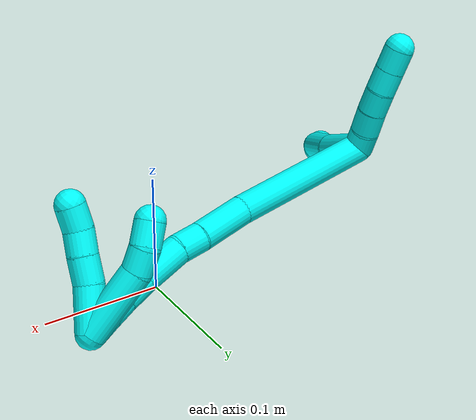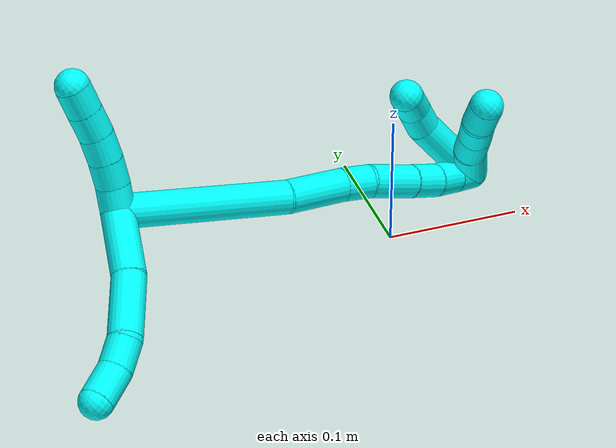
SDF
<sdf version="1.7">
 <world name="default">
  <model name="3">
   <static>0</static>
   <link name="3">
    <collision name="collision-cylinder-e_1_2_8">
     <pose>-0.01956 -0.01368 -0.009776 2.19125 -0.860745 -1.45708</pose>
     <geometry><cylinder><radius>0.0125</radius><length>0.051588</length></cylinder></geometry>
     <surface>
      <friction><ode><mu>1.16</mu><mu2>1.16</mu2><slip1>0</slip1><slip2>0</slip2></ode></friction>
      <contact><ode><kp>1e+06</kp><kd>1</kd><max_vel>0</max_vel><min_depth>0.001</min_depth></ode></contact>
     </surface>
    </collision>
    <visual name="visual-cylinder-e_1_2_8">
     <pose>-0.01956 -0.01368 -0.009776 2.19125 -0.860745 -1.45708</pose>
     <geometry><cylinder><radius>0.0125</radius><length>0.051588</length></cylinder></geometry>
     <material><ambient>0.003922 1 0.996078 1</ambient></material>
    </visual>
    <collision name="collision-cylinder-e_2_8_9">
     <pose>-0.060114 -0.038274 -0.024937 2.02915 -1.04544 -1.49484</pose>
     <geometry><cylinder><radius>0.0125</radius><length>0.048532</length></cylinder></geometry>
     <surface>
      <friction><ode><mu>1.16</mu><mu2>1.16</mu2><slip1>0</slip1><slip2>0</slip2></ode></friction>
      <contact><ode><kp>1e+06</kp><kd>1</kd><max_vel>0</max_vel><min_depth>0.001</min_depth></ode></contact>
     </surface>
    </collision>
    <visual name="visual-cylinder-e_2_8_9">
     <pose>-0.060114 -0.038274 -0.024937 2.02915 -1.04544 -1.49484</pose>
     <geometry><cylinder><radius>0.0125</radius><length>0.048532</length></cylinder></geometry>
     <material><ambient>0.003922 1 0.996078 1</ambient></material>
    </visual>
    <collision name="collision-cylinder-e_3_9_10">
     <pose>-0.092113 -0.050835 -0.032421 2.47615 -1.33294 -2.31364</pose>
     <geometry><cylinder><radius>0.0125</radius><length>0.022648</length></cylinder></geometry>
     <surface>
      <friction><ode><mu>1.16</mu><mu2>1.16</mu2><slip1>0</slip1><slip2>0</slip2></ode></friction>
      <contact><ode><kp>1e+06</kp><kd>1</kd><max_vel>0</max_vel><min_depth>0.001</min_depth></ode></contact>
     </surface>
    </collision>
    <visual name="visual-cylinder-e_3_9_10">
     <pose>-0.092113 -0.050835 -0.032421 2.47615 -1.33294 -2.31364</pose>
     <geometry><cylinder><radius>0.0125</radius><length>0.022648</length></cylinder></geometry>
     <material><ambient>0.003922 1 0.996078 1</ambient></material>
    </visual>
    <collision name="collision-cylinder-e_4_10_6">
     <pose>-0.116294 -0.055556 -0.032983 1.1073 -1.3157 -0.891162</pose>
     <geometry><cylinder><radius>0.0125</radius><length>0.027232</length></cylinder></geometry>
     <surface>
      <friction><ode><mu>1.16</mu><mu2>1.16</mu2><slip1>0</slip1><slip2>0</slip2></ode></friction>
      <contact><ode><kp>1e+06</kp><kd>1</kd><max_vel>0</max_vel><min_depth>0.001</min_depth></ode></contact>
     </surface>
    </collision>
    <visual name="visual-cylinder-e_4_10_6">
     <pose>-0.116294 -0.055556 -0.032983 1.1073 -1.3157 -0.891162</pose>
     <geometry><cylinder><radius>0.0125</radius><length>0.027232</length></cylinder></geometry>
     <material><ambient>0.003922 1 0.996078 1</ambient></material>
    </visual>
    <collision name="collision-cylinder-e_1_2_11">
     <pose>0.005925 -0.001029 0.007989 0.128113 0.634209 0.042095</pose>
     <geometry><cylinder><radius>0.0125</radius><length>0.02</length></cylinder></geometry>
     <surface>
      <friction><ode><mu>1.16</mu><mu2>1.16</mu2><slip1>0</slip1><slip2>0</slip2></ode></friction>
      <contact><ode><kp>1e+06</kp><kd>1</kd><max_vel>0</max_vel><min_depth>0.001</min_depth></ode></contact>
     </surface>
    </collision>
    <visual name="visual-cylinder-e_1_2_11">
     <pose>0.005925 -0.001029 0.007989 0.128113 0.634209 0.042095</pose>
     <geometry><cylinder><radius>0.0125</radius><length>0.02</length></cylinder></geometry>
     <material><ambient>0.003922 1 0.996078 1</ambient></material>
    </visual>
    <collision name="collision-cylinder-e_2_11_12">
     <pose>0.016407 -0.003937 0.02468 0.212633 0.473104 0.051441</pose>
     <geometry><cylinder><radius>0.0125</radius><length>0.02</length></cylinder></geometry>
     <surface>
      <friction><ode><mu>1.16</mu><mu2>1.16</mu2><slip1>0</slip1><slip2>0</slip2></ode></friction>
      <contact><ode><kp>1e+06</kp><kd>1</kd><max_vel>0</max_vel><min_depth>0.001</min_depth></ode></contact>
     </surface>
    </collision>
    <visual name="visual-cylinder-e_2_11_12">
     <pose>0.016407 -0.003937 0.02468 0.212633 0.473104 0.051441</pose>
     <geometry><cylinder><radius>0.0125</radius><length>0.02</length></cylinder></geometry>
     <material><ambient>0.003922 1 0.996078 1</ambient></material>
    </visual>
    <collision name="collision-cylinder-e_3_12_13">
     <pose>0.024954 -0.007377 0.042417 0.171149 0.410424 0.035707</pose>
     <geometry><cylinder><radius>0.0125</radius><length>0.02</length></cylinder></geometry>
     <surface>
      <friction><ode><mu>1.16</mu><mu2>1.16</mu2><slip1>0</slip1><slip2>0</slip2></ode></friction>
      <contact><ode><kp>1e+06</kp><kd>1</kd><max_vel>0</max_vel><min_depth>0.001</min_depth></ode></contact>
     </surface>
    </collision>
    <visual name="visual-cylinder-e_3_12_13">
     <pose>0.024954 -0.007377 0.042417 0.171149 0.410424 0.035707</pose>
     <geometry><cylinder><radius>0.0125</radius><length>0.02</length></cylinder></geometry>
     <material><ambient>0.003922 1 0.996078 1</ambient></material>
    </visual>
    <collision name="collision-cylinder-e_4_13_14">
     <pose>0.031883 -0.010606 0.060864 0.175292 0.298365 0.026412</pose>
     <geometry><cylinder><radius>0.0125</radius><length>0.02</length></cylinder></geometry>
     <surface>
      <friction><ode><mu>1.16</mu><mu2>1.16</mu2><slip1>0</slip1><slip2>0</slip2></ode></friction>
      <contact><ode><kp>1e+06</kp><kd>1</kd><max_vel>0</max_vel><min_depth>0.001</min_depth></ode></contact>
     </surface>
    </collision>
    <visual name="visual-cylinder-e_4_13_14">
     <pose>0.031883 -0.010606 0.060864 0.175292 0.298365 0.026412</pose>
     <geometry><cylinder><radius>0.0125</radius><length>0.02</length></cylinder></geometry>
     <material><ambient>0.003922 1 0.996078 1</ambient></material>
    </visual>
    <collision name="collision-cylinder-e_5_14_5">
     <pose>0.037764 -0.013948 0.079685 0.176192 0.298549 0.026565</pose>
     <geometry><cylinder><radius>0.0125</radius><length>0.02</length></cylinder></geometry>
     <surface>
      <friction><ode><mu>1.16</mu><mu2>1.16</mu2><slip1>0</slip1><slip2>0</slip2></ode></friction>
      <contact><ode><kp>1e+06</kp><kd>1</kd><max_vel>0</max_vel><min_depth>0.001</min_depth></ode></contact>
     </surface>
    </collision>
    <visual name="visual-cylinder-e_5_14_5">
     <pose>0.037764 -0.013948 0.079685 0.176192 0.298549 0.026565</pose>
     <geometry><cylinder><radius>0.0125</radius><length>0.02</length></cylinder></geometry>
     <material><ambient>0.003922 1 0.996078 1</ambient></material>
    </visual>
    <collision name="collision-cylinder-e_1_2_15">
     <pose>0.041196 -0.014426 -0.046958 2.84353 0.697848 2.35879</pose>
     <geometry><cylinder><radius>0.0125</radius><length>0.128223</length></cylinder></geometry>
     <surface>
      <friction><ode><mu>1.16</mu><mu2>1.16</mu2><slip1>0</slip1><slip2>0</slip2></ode></friction>
      <contact><ode><kp>1e+06</kp><kd>1</kd><max_vel>0</max_vel><min_depth>0.001</min_depth></ode></contact>
     </surface>
    </collision>
    <visual name="visual-cylinder-e_1_2_15">
     <pose>0.041196 -0.014426 -0.046958 2.84353 0.697848 2.35879</pose>
     <geometry><cylinder><radius>0.0125</radius><length>0.128223</length></cylinder></geometry>
     <material><ambient>0.003922 1 0.996078 1</ambient></material>
    </visual>
    <collision name="collision-cylinder-e_2_15_16">
     <pose>0.09958 -0.031403 -0.109806 2.98244 0.818246 2.77782</pose>
     <geometry><cylinder><radius>0.0125</radius><length>0.047092</length></cylinder></geometry>
     <surface>
      <friction><ode><mu>1.16</mu><mu2>1.16</mu2><slip1>0</slip1><slip2>0</slip2></ode></friction>
      <contact><ode><kp>1e+06</kp><kd>1</kd><max_vel>0</max_vel><min_depth>0.001</min_depth></ode></contact>
     </surface>
    </collision>
    <visual name="visual-cylinder-e_2_15_16">
     <pose>0.09958 -0.031403 -0.109806 2.98244 0.818246 2.77782</pose>
     <geometry><cylinder><radius>0.0125</radius><length>0.047092</length></cylinder></geometry>
     <material><ambient>0.003922 1 0.996078 1</ambient></material>
    </visual>
    <collision name="collision-cylinder-e_3_16_17">
     <pose>0.124326 -0.036126 -0.133644 2.87471 0.742369 2.47737</pose>
     <geometry><cylinder><radius>0.0125</radius><length>0.022363</length></cylinder></geometry>
     <surface>
      <friction><ode><mu>1.16</mu><mu2>1.16</mu2><slip1>0</slip1><slip2>0</slip2></ode></friction>
      <contact><ode><kp>1e+06</kp><kd>1</kd><max_vel>0</max_vel><min_depth>0.001</min_depth></ode></contact>
     </surface>
    </collision>
    <visual name="visual-cylinder-e_3_16_17">
     <pose>0.124326 -0.036126 -0.133644 2.87471 0.742369 2.47737</pose>
     <geometry><cylinder><radius>0.0125</radius><length>0.022363</length></cylinder></geometry>
     <material><ambient>0.003922 1 0.996078 1</ambient></material>
    </visual>
    <collision name="collision-cylinder-e_4_17_18">
     <pose>0.143237 -0.039114 -0.157024 3.08882 0.633567 2.98092</pose>
     <geometry><cylinder><radius>0.0125</radius><length>0.038351</length></cylinder></geometry>
     <surface>
      <friction><ode><mu>1.16</mu><mu2>1.16</mu2><slip1>0</slip1><slip2>0</slip2></ode></friction>
      <contact><ode><kp>1e+06</kp><kd>1</kd><max_vel>0</max_vel><min_depth>0.001</min_depth></ode></contact>
     </surface>
    </collision>
    <visual name="visual-cylinder-e_4_17_18">
     <pose>0.143237 -0.039114 -0.157024 3.08882 0.633567 2.98092</pose>
     <geometry><cylinder><radius>0.0125</radius><length>0.038351</length></cylinder></geometry>
     <material><ambient>0.003922 1 0.996078 1</ambient></material>
    </visual>
    <collision name="collision-cylinder-e_5_18_19">
     <pose>0.161874 -0.039707 -0.181827 -3.11789 0.660645 -3.07249</pose>
     <geometry><cylinder><radius>0.0125</radius><length>0.023742</length></cylinder></geometry>
     <surface>
      <friction><ode><mu>1.16</mu><mu2>1.16</mu2><slip1>0</slip1><slip2>0</slip2></ode></friction>
      <contact><ode><kp>1e+06</kp><kd>1</kd><max_vel>0</max_vel><min_depth>0.001</min_depth></ode></contact>
     </surface>
    </collision>
    <visual name="visual-cylinder-e_5_18_19">
     <pose>0.161874 -0.039707 -0.181827 -3.11789 0.660645 -3.07249</pose>
     <geometry><cylinder><radius>0.0125</radius><length>0.023742</length></cylinder></geometry>
     <material><ambient>0.003922 1 0.996078 1</ambient></material>
    </visual>
    <collision name="collision-cylinder-e_6_19_20">
     <pose>0.176191 -0.038464 -0.198298 -2.99878 0.775472 -2.79483</pose>
     <geometry><cylinder><radius>0.0125</radius><length>0.02009</length></cylinder></geometry>
     <surface>
      <friction><ode><mu>1.16</mu><mu2>1.16</mu2><slip1>0</slip1><slip2>0</slip2></ode></friction>
      <contact><ode><kp>1e+06</kp><kd>1</kd><max_vel>0</max_vel><min_depth>0.001</min_depth></ode></contact>
     </surface>
    </collision>
    <visual name="visual-cylinder-e_6_19_20">
     <pose>0.176191 -0.038464 -0.198298 -2.99878 0.775472 -2.79483</pose>
     <geometry><cylinder><radius>0.0125</radius><length>0.02009</length></cylinder></geometry>
     <material><ambient>0.003922 1 0.996078 1</ambient></material>
    </visual>
    <collision name="collision-cylinder-e_7_20_1">
     <pose>0.190382 -0.036126 -0.212355 -2.95449 0.790956 -2.69944</pose>
     <geometry><cylinder><radius>0.0125</radius><length>0.020139</length></cylinder></geometry>
     <surface>
      <friction><ode><mu>1.16</mu><mu2>1.16</mu2><slip1>0</slip1><slip2>0</slip2></ode></friction>
      <contact><ode><kp>1e+06</kp><kd>1</kd><max_vel>0</max_vel><min_depth>0.001</min_depth></ode></contact>
     </surface>
    </collision>
    <visual name="visual-cylinder-e_7_20_1">
     <pose>0.190382 -0.036126 -0.212355 -2.95449 0.790956 -2.69944</pose>
     <geometry><cylinder><radius>0.0125</radius><length>0.020139</length></cylinder></geometry>
     <material><ambient>0.003922 1 0.996078 1</ambient></material>
    </visual>
    <collision name="collision-cylinder-e_1_1_21">
     <pose>0.197546 -0.047223 -0.205198 0.721424 0.000187 7e-05</pose>
     <geometry><cylinder><radius>0.0125</radius><length>0.037594</length></cylinder></geometry>
     <surface>
      <friction><ode><mu>1.16</mu><mu2>1.16</mu2><slip1>0</slip1><slip2>0</slip2></ode></friction>
      <contact><ode><kp>1e+06</kp><kd>1</kd><max_vel>0</max_vel><min_depth>0.001</min_depth></ode></contact>
     </surface>
    </collision>
    <visual name="visual-cylinder-e_1_1_21">
     <pose>0.197546 -0.047223 -0.205198 0.721424 0.000187 7e-05</pose>
     <geometry><cylinder><radius>0.0125</radius><length>0.037594</length></cylinder></geometry>
     <material><ambient>0.003922 1 0.996078 1</ambient></material>
    </visual>
    <collision name="collision-cylinder-e_2_21_22">
     <pose>0.199137 -0.067921 -0.183838 0.852074 0.143328 0.065136</pose>
     <geometry><cylinder><radius>0.0125</radius><length>0.022238</length></cylinder></geometry>
     <surface>
      <friction><ode><mu>1.16</mu><mu2>1.16</mu2><slip1>0</slip1><slip2>0</slip2></ode></friction>
      <contact><ode><kp>1e+06</kp><kd>1</kd><max_vel>0</max_vel><min_depth>0.001</min_depth></ode></contact>
     </surface>
    </collision>
    <visual name="visual-cylinder-e_2_21_22">
     <pose>0.199137 -0.067921 -0.183838 0.852074 0.143328 0.065136</pose>
     <geometry><cylinder><radius>0.0125</radius><length>0.022238</length></cylinder></geometry>
     <material><ambient>0.003922 1 0.996078 1</ambient></material>
    </visual>
    <collision name="collision-cylinder-e_3_22_23">
     <pose>0.201556 -0.083499 -0.16977 0.818853 0.082964 0.036019</pose>
     <geometry><cylinder><radius>0.0125</radius><length>0.020046</length></cylinder></geometry>
     <surface>
      <friction><ode><mu>1.16</mu><mu2>1.16</mu2><slip1>0</slip1><slip2>0</slip2></ode></friction>
      <contact><ode><kp>1e+06</kp><kd>1</kd><max_vel>0</max_vel><min_depth>0.001</min_depth></ode></contact>
     </surface>
    </collision>
    <visual name="visual-cylinder-e_3_22_23">
     <pose>0.201556 -0.083499 -0.16977 0.818853 0.082964 0.036019</pose>
     <geometry><cylinder><radius>0.0125</radius><length>0.020046</length></cylinder></geometry>
     <material><ambient>0.003922 1 0.996078 1</ambient></material>
    </visual>
    <collision name="collision-cylinder-e_4_23_4">
     <pose>0.205657 -0.09817 -0.156936 0.887029 0.331015 0.158379</pose>
     <geometry><cylinder><radius>0.0125</radius><length>0.020122</length></cylinder></geometry>
     <surface>
      <friction><ode><mu>1.16</mu><mu2>1.16</mu2><slip1>0</slip1><slip2>0</slip2></ode></friction>
      <contact><ode><kp>1e+06</kp><kd>1</kd><max_vel>0</max_vel><min_depth>0.001</min_depth></ode></contact>
     </surface>
    </collision>
    <visual name="visual-cylinder-e_4_23_4">
     <pose>0.205657 -0.09817 -0.156936 0.887029 0.331015 0.158379</pose>
     <geometry><cylinder><radius>0.0125</radius><length>0.020122</length></cylinder></geometry>
     <material><ambient>0.003922 1 0.996078 1</ambient></material>
    </visual>
    <collision name="collision-cylinder-e_1_1_24">
     <pose>0.196661 -0.035387 -0.189357 0.019292 -0.029409 -0.000284</pose>
     <geometry><cylinder><radius>0.0125</radius><length>0.059947</length></cylinder></geometry>
     <surface>
      <friction><ode><mu>1.16</mu><mu2>1.16</mu2><slip1>0</slip1><slip2>0</slip2></ode></friction>
      <contact><ode><kp>1e+06</kp><kd>1</kd><max_vel>0</max_vel><min_depth>0.001</min_depth></ode></contact>
     </surface>
    </collision>
    <visual name="visual-cylinder-e_1_1_24">
     <pose>0.196661 -0.035387 -0.189357 0.019292 -0.029409 -0.000284</pose>
     <geometry><cylinder><radius>0.0125</radius><length>0.059947</length></cylinder></geometry>
     <material><ambient>0.003922 1 0.996078 1</ambient></material>
    </visual>
    <collision name="collision-cylinder-e_2_24_25">
     <pose>0.196724 -0.038814 -0.149853 0.289979 0.094473 0.013804</pose>
     <geometry><cylinder><radius>0.0125</radius><length>0.020021</length></cylinder></geometry>
     <surface>
      <friction><ode><mu>1.16</mu><mu2>1.16</mu2><slip1>0</slip1><slip2>0</slip2></ode></friction>
      <contact><ode><kp>1e+06</kp><kd>1</kd><max_vel>0</max_vel><min_depth>0.001</min_depth></ode></contact>
     </surface>
    </collision>
    <visual name="visual-cylinder-e_2_24_25">
     <pose>0.196724 -0.038814 -0.149853 0.289979 0.094473 0.013804</pose>
     <geometry><cylinder><radius>0.0125</radius><length>0.020021</length></cylinder></geometry>
     <material><ambient>0.003922 1 0.996078 1</ambient></material>
    </visual>
    <collision name="collision-cylinder-e_3_25_3">
     <pose>0.196754 -0.046553 -0.131609 0.512237 -0.091354 -0.023938</pose>
     <geometry><cylinder><radius>0.0125</radius><length>0.020032</length></cylinder></geometry>
     <surface>
      <friction><ode><mu>1.16</mu><mu2>1.16</mu2><slip1>0</slip1><slip2>0</slip2></ode></friction>
      <contact><ode><kp>1e+06</kp><kd>1</kd><max_vel>0</max_vel><min_depth>0.001</min_depth></ode></contact>
     </surface>
    </collision>
    <visual name="visual-cylinder-e_3_25_3">
     <pose>0.196754 -0.046553 -0.131609 0.512237 -0.091354 -0.023938</pose>
     <geometry><cylinder><radius>0.0125</radius><length>0.020032</length></cylinder></geometry>
     <material><ambient>0.003922 1 0.996078 1</ambient></material>
    </visual>
    <collision name="collision-sphere-3">
     <pose>0.19584 -0.051442 -0.122914 0 -0 0</pose>
     <geometry><sphere><radius>0.0125</radius></sphere></geometry>
     <surface>
      <friction><ode><mu>1.16</mu><mu2>1.16</mu2><slip1>0</slip1><slip2>0</slip2></ode></friction>
      <contact><ode><kp>1e+06</kp><kd>1</kd><max_vel>0</max_vel><min_depth>0.001</min_depth></ode></contact>
     </surface>
    </collision>
    <visual name="visual-sphere-3">
     <pose>0.19584 -0.051442 -0.122914 0 -0 0</pose>
     <geometry><sphere><radius>0.0125</radius></sphere></geometry>
     <material><ambient>0.003922 1 0.996078 1</ambient></material>
    </visual>
    <collision name="collision-sphere-25">
     <pose>0.197668 -0.041664 -0.140303 0 -0 0</pose>
     <geometry><sphere><radius>0.0125</radius></sphere></geometry>
     <surface>
      <friction><ode><mu>1.16</mu><mu2>1.16</mu2><slip1>0</slip1><slip2>0</slip2></ode></friction>
      <contact><ode><kp>1e+06</kp><kd>1</kd><max_vel>0</max_vel><min_depth>0.001</min_depth></ode></contact>
     </surface>
    </collision>
    <visual name="visual-sphere-25">
     <pose>0.197668 -0.041664 -0.140303 0 -0 0</pose>
     <geometry><sphere><radius>0.0125</radius></sphere></geometry>
     <material><ambient>0.003922 1 0.996078 1</ambient></material>
    </visual>
    <collision name="collision-sphere-24">
     <pose>0.195779 -0.035965 -0.159403 0 -0 0</pose>
     <geometry><sphere><radius>0.0125</radius></sphere></geometry>
     <surface>
      <friction><ode><mu>1.16</mu><mu2>1.16</mu2><slip1>0</slip1><slip2>0</slip2></ode></friction>
      <contact><ode><kp>1e+06</kp><kd>1</kd><max_vel>0</max_vel><min_depth>0.001</min_depth></ode></contact>
     </surface>
    </collision>
    <visual name="visual-sphere-24">
     <pose>0.195779 -0.035965 -0.159403 0 -0 0</pose>
     <geometry><sphere><radius>0.0125</radius></sphere></geometry>
     <material><ambient>0.003922 1 0.996078 1</ambient></material>
    </visual>
    <collision name="collision-sphere-4">
     <pose>0.208926 -0.105546 -0.150925 0 -0 0</pose>
     <geometry><sphere><radius>0.0125</radius></sphere></geometry>
     <surface>
      <friction><ode><mu>1.16</mu><mu2>1.16</mu2><slip1>0</slip1><slip2>0</slip2></ode></friction>
      <contact><ode><kp>1e+06</kp><kd>1</kd><max_vel>0</max_vel><min_depth>0.001</min_depth></ode></contact>
     </surface>
    </collision>
    <visual name="visual-sphere-4">
     <pose>0.208926 -0.105546 -0.150925 0 -0 0</pose>
     <geometry><sphere><radius>0.0125</radius></sphere></geometry>
     <material><ambient>0.003922 1 0.996078 1</ambient></material>
    </visual>
    <collision name="collision-sphere-23">
     <pose>0.202387 -0.090794 -0.162947 0 -0 0</pose>
     <geometry><sphere><radius>0.0125</radius></sphere></geometry>
     <surface>
      <friction><ode><mu>1.16</mu><mu2>1.16</mu2><slip1>0</slip1><slip2>0</slip2></ode></friction>
      <contact><ode><kp>1e+06</kp><kd>1</kd><max_vel>0</max_vel><min_depth>0.001</min_depth></ode></contact>
     </surface>
    </collision>
    <visual name="visual-sphere-23">
     <pose>0.202387 -0.090794 -0.162947 0 -0 0</pose>
     <geometry><sphere><radius>0.0125</radius></sphere></geometry>
     <material><ambient>0.003922 1 0.996078 1</ambient></material>
    </visual>
    <collision name="collision-sphere-22">
     <pose>0.200725 -0.076204 -0.176592 0 -0 0</pose>
     <geometry><sphere><radius>0.0125</radius></sphere></geometry>
     <surface>
      <friction><ode><mu>1.16</mu><mu2>1.16</mu2><slip1>0</slip1><slip2>0</slip2></ode></friction>
      <contact><ode><kp>1e+06</kp><kd>1</kd><max_vel>0</max_vel><min_depth>0.001</min_depth></ode></contact>
     </surface>
    </collision>
    <visual name="visual-sphere-22">
     <pose>0.200725 -0.076204 -0.176592 0 -0 0</pose>
     <geometry><sphere><radius>0.0125</radius></sphere></geometry>
     <material><ambient>0.003922 1 0.996078 1</ambient></material>
    </visual>
    <collision name="collision-sphere-21">
     <pose>0.197549 -0.059638 -0.191084 0 -0 0</pose>
     <geometry><sphere><radius>0.0125</radius></sphere></geometry>
     <surface>
      <friction><ode><mu>1.16</mu><mu2>1.16</mu2><slip1>0</slip1><slip2>0</slip2></ode></friction>
      <contact><ode><kp>1e+06</kp><kd>1</kd><max_vel>0</max_vel><min_depth>0.001</min_depth></ode></contact>
     </surface>
    </collision>
    <visual name="visual-sphere-21">
     <pose>0.197549 -0.059638 -0.191084 0 -0 0</pose>
     <geometry><sphere><radius>0.0125</radius></sphere></geometry>
     <material><ambient>0.003922 1 0.996078 1</ambient></material>
    </visual>
    <collision name="collision-sphere-1">
     <pose>0.197542 -0.034809 -0.219312 0 -0 0</pose>
     <geometry><sphere><radius>0.0125</radius></sphere></geometry>
     <surface>
      <friction><ode><mu>1.16</mu><mu2>1.16</mu2><slip1>0</slip1><slip2>0</slip2></ode></friction>
      <contact><ode><kp>1e+06</kp><kd>1</kd><max_vel>0</max_vel><min_depth>0.001</min_depth></ode></contact>
     </surface>
    </collision>
    <visual name="visual-sphere-1">
     <pose>0.197542 -0.034809 -0.219312 0 -0 0</pose>
     <geometry><sphere><radius>0.0125</radius></sphere></geometry>
     <material><ambient>0.003922 1 0.996078 1</ambient></material>
    </visual>
    <collision name="collision-sphere-11">
     <pose>0.011851 -0.002058 0.015979 0 -0 0</pose>
     <geometry><sphere><radius>0.0125</radius></sphere></geometry>
     <surface>
      <friction><ode><mu>1.16</mu><mu2>1.16</mu2><slip1>0</slip1><slip2>0</slip2></ode></friction>
      <contact><ode><kp>1e+06</kp><kd>1</kd><max_vel>0</max_vel><min_depth>0.001</min_depth></ode></contact>
     </surface>
    </collision>
    <visual name="visual-sphere-11">
     <pose>0.011851 -0.002058 0.015979 0 -0 0</pose>
     <geometry><sphere><radius>0.0125</radius></sphere></geometry>
     <material><ambient>0.003922 1 0.996078 1</ambient></material>
    </visual>
    <collision name="collision-sphere-6">
     <pose>-0.129469 -0.058629 -0.031447 0 -0 0</pose>
     <geometry><sphere><radius>0.0125</radius></sphere></geometry>
     <surface>
      <friction><ode><mu>1.16</mu><mu2>1.16</mu2><slip1>0</slip1><slip2>0</slip2></ode></friction>
      <contact><ode><kp>1e+06</kp><kd>1</kd><max_vel>0</max_vel><min_depth>0.001</min_depth></ode></contact>
     </surface>
    </collision>
    <visual name="visual-sphere-6">
     <pose>-0.129469 -0.058629 -0.031447 0 -0 0</pose>
     <geometry><sphere><radius>0.0125</radius></sphere></geometry>
     <material><ambient>0.003922 1 0.996078 1</ambient></material>
    </visual>
    <collision name="collision-sphere-10">
     <pose>-0.103118 -0.052483 -0.034519 0 -0 0</pose>
     <geometry><sphere><radius>0.0125</radius></sphere></geometry>
     <surface>
      <friction><ode><mu>1.16</mu><mu2>1.16</mu2><slip1>0</slip1><slip2>0</slip2></ode></friction>
      <contact><ode><kp>1e+06</kp><kd>1</kd><max_vel>0</max_vel><min_depth>0.001</min_depth></ode></contact>
     </surface>
    </collision>
    <visual name="visual-sphere-10">
     <pose>-0.103118 -0.052483 -0.034519 0 -0 0</pose>
     <geometry><sphere><radius>0.0125</radius></sphere></geometry>
     <material><ambient>0.003922 1 0.996078 1</ambient></material>
    </visual>
    <collision name="collision-sphere-9">
     <pose>-0.081108 -0.049188 -0.030322 0 -0 0</pose>
     <geometry><sphere><radius>0.0125</radius></sphere></geometry>
     <surface>
      <friction><ode><mu>1.16</mu><mu2>1.16</mu2><slip1>0</slip1><slip2>0</slip2></ode></friction>
      <contact><ode><kp>1e+06</kp><kd>1</kd><max_vel>0</max_vel><min_depth>0.001</min_depth></ode></contact>
     </surface>
    </collision>
    <visual name="visual-sphere-9">
     <pose>-0.081108 -0.049188 -0.030322 0 -0 0</pose>
     <geometry><sphere><radius>0.0125</radius></sphere></geometry>
     <material><ambient>0.003922 1 0.996078 1</ambient></material>
    </visual>
    <collision name="collision-sphere-2">
     <geometry><sphere><radius>0.0125</radius></sphere></geometry>
     <surface>
      <friction><ode><mu>1.16</mu><mu2>1.16</mu2><slip1>0</slip1><slip2>0</slip2></ode></friction>
      <contact><ode><kp>1e+06</kp><kd>1</kd><max_vel>0</max_vel><min_depth>0.001</min_depth></ode></contact>
     </surface>
    </collision>
    <visual name="visual-sphere-2">
     <geometry><sphere><radius>0.0125</radius></sphere></geometry>
     <material><ambient>0.003922 1 0.996078 1</ambient></material>
    </visual>
    <collision name="collision-sphere-19">
     <pose>0.169159 -0.039485 -0.191198 0 -0 0</pose>
     <geometry><sphere><radius>0.0125</radius></sphere></geometry>
     <surface>
      <friction><ode><mu>1.16</mu><mu2>1.16</mu2><slip1>0</slip1><slip2>0</slip2></ode></friction>
      <contact><ode><kp>1e+06</kp><kd>1</kd><max_vel>0</max_vel><min_depth>0.001</min_depth></ode></contact>
     </surface>
    </collision>
    <visual name="visual-sphere-19">
     <pose>0.169159 -0.039485 -0.191198 0 -0 0</pose>
     <geometry><sphere><radius>0.0125</radius></sphere></geometry>
     <material><ambient>0.003922 1 0.996078 1</ambient></material>
    </visual>
    <collision name="collision-sphere-8">
     <pose>-0.03912 -0.027361 -0.019552 0 -0 0</pose>
     <geometry><sphere><radius>0.0125</radius></sphere></geometry>
     <surface>
      <friction><ode><mu>1.16</mu><mu2>1.16</mu2><slip1>0</slip1><slip2>0</slip2></ode></friction>
      <contact><ode><kp>1e+06</kp><kd>1</kd><max_vel>0</max_vel><min_depth>0.001</min_depth></ode></contact>
     </surface>
    </collision>
    <visual name="visual-sphere-8">
     <pose>-0.03912 -0.027361 -0.019552 0 -0 0</pose>
     <geometry><sphere><radius>0.0125</radius></sphere></geometry>
     <material><ambient>0.003922 1 0.996078 1</ambient></material>
    </visual>
    <collision name="collision-sphere-12">
     <pose>0.020964 -0.005815 0.033381 0 -0 0</pose>
     <geometry><sphere><radius>0.0125</radius></sphere></geometry>
     <surface>
      <friction><ode><mu>1.16</mu><mu2>1.16</mu2><slip1>0</slip1><slip2>0</slip2></ode></friction>
      <contact><ode><kp>1e+06</kp><kd>1</kd><max_vel>0</max_vel><min_depth>0.001</min_depth></ode></contact>
     </surface>
    </collision>
    <visual name="visual-sphere-12">
     <pose>0.020964 -0.005815 0.033381 0 -0 0</pose>
     <geometry><sphere><radius>0.0125</radius></sphere></geometry>
     <material><ambient>0.003922 1 0.996078 1</ambient></material>
    </visual>
    <collision name="collision-sphere-13">
     <pose>0.028944 -0.008939 0.051452 0 -0 0</pose>
     <geometry><sphere><radius>0.0125</radius></sphere></geometry>
     <surface>
      <friction><ode><mu>1.16</mu><mu2>1.16</mu2><slip1>0</slip1><slip2>0</slip2></ode></friction>
      <contact><ode><kp>1e+06</kp><kd>1</kd><max_vel>0</max_vel><min_depth>0.001</min_depth></ode></contact>
     </surface>
    </collision>
    <visual name="visual-sphere-13">
     <pose>0.028944 -0.008939 0.051452 0 -0 0</pose>
     <geometry><sphere><radius>0.0125</radius></sphere></geometry>
     <material><ambient>0.003922 1 0.996078 1</ambient></material>
    </visual>
    <collision name="collision-sphere-14">
     <pose>0.034823 -0.012273 0.070276 0 -0 0</pose>
     <geometry><sphere><radius>0.0125</radius></sphere></geometry>
     <surface>
      <friction><ode><mu>1.16</mu><mu2>1.16</mu2><slip1>0</slip1><slip2>0</slip2></ode></friction>
      <contact><ode><kp>1e+06</kp><kd>1</kd><max_vel>0</max_vel><min_depth>0.001</min_depth></ode></contact>
     </surface>
    </collision>
    <visual name="visual-sphere-14">
     <pose>0.034823 -0.012273 0.070276 0 -0 0</pose>
     <geometry><sphere><radius>0.0125</radius></sphere></geometry>
     <material><ambient>0.003922 1 0.996078 1</ambient></material>
    </visual>
    <collision name="collision-sphere-5">
     <pose>0.040706 -0.015623 0.089095 0 -0 0</pose>
     <geometry><sphere><radius>0.0125</radius></sphere></geometry>
     <surface>
      <friction><ode><mu>1.16</mu><mu2>1.16</mu2><slip1>0</slip1><slip2>0</slip2></ode></friction>
      <contact><ode><kp>1e+06</kp><kd>1</kd><max_vel>0</max_vel><min_depth>0.001</min_depth></ode></contact>
     </surface>
    </collision>
    <visual name="visual-sphere-5">
     <pose>0.040706 -0.015623 0.089095 0 -0 0</pose>
     <geometry><sphere><radius>0.0125</radius></sphere></geometry>
     <material><ambient>0.003922 1 0.996078 1</ambient></material>
    </visual>
    <collision name="collision-sphere-15">
     <pose>0.082392 -0.028852 -0.093916 0 -0 0</pose>
     <geometry><sphere><radius>0.0125</radius></sphere></geometry>
     <surface>
      <friction><ode><mu>1.16</mu><mu2>1.16</mu2><slip1>0</slip1><slip2>0</slip2></ode></friction>
      <contact><ode><kp>1e+06</kp><kd>1</kd><max_vel>0</max_vel><min_depth>0.001</min_depth></ode></contact>
     </surface>
    </collision>
    <visual name="visual-sphere-15">
     <pose>0.082392 -0.028852 -0.093916 0 -0 0</pose>
     <geometry><sphere><radius>0.0125</radius></sphere></geometry>
     <material><ambient>0.003922 1 0.996078 1</ambient></material>
    </visual>
    <collision name="collision-sphere-16">
     <pose>0.116767 -0.033953 -0.125697 0 -0 0</pose>
     <geometry><sphere><radius>0.0125</radius></sphere></geometry>
     <surface>
      <friction><ode><mu>1.16</mu><mu2>1.16</mu2><slip1>0</slip1><slip2>0</slip2></ode></friction>
      <contact><ode><kp>1e+06</kp><kd>1</kd><max_vel>0</max_vel><min_depth>0.001</min_depth></ode></contact>
     </surface>
    </collision>
    <visual name="visual-sphere-16">
     <pose>0.116767 -0.033953 -0.125697 0 -0 0</pose>
     <geometry><sphere><radius>0.0125</radius></sphere></geometry>
     <material><ambient>0.003922 1 0.996078 1</ambient></material>
    </visual>
    <collision name="collision-sphere-17">
     <pose>0.131885 -0.038299 -0.141591 0 -0 0</pose>
     <geometry><sphere><radius>0.0125</radius></sphere></geometry>
     <surface>
      <friction><ode><mu>1.16</mu><mu2>1.16</mu2><slip1>0</slip1><slip2>0</slip2></ode></friction>
      <contact><ode><kp>1e+06</kp><kd>1</kd><max_vel>0</max_vel><min_depth>0.001</min_depth></ode></contact>
     </surface>
    </collision>
    <visual name="visual-sphere-17">
     <pose>0.131885 -0.038299 -0.141591 0 -0 0</pose>
     <geometry><sphere><radius>0.0125</radius></sphere></geometry>
     <material><ambient>0.003922 1 0.996078 1</ambient></material>
    </visual>
    <collision name="collision-sphere-18">
     <pose>0.15459 -0.039929 -0.172457 0 -0 0</pose>
     <geometry><sphere><radius>0.0125</radius></sphere></geometry>
     <surface>
      <friction><ode><mu>1.16</mu><mu2>1.16</mu2><slip1>0</slip1><slip2>0</slip2></ode></friction>
      <contact><ode><kp>1e+06</kp><kd>1</kd><max_vel>0</max_vel><min_depth>0.001</min_depth></ode></contact>
     </surface>
    </collision>
    <visual name="visual-sphere-18">
     <pose>0.15459 -0.039929 -0.172457 0 -0 0</pose>
     <geometry><sphere><radius>0.0125</radius></sphere></geometry>
     <material><ambient>0.003922 1 0.996078 1</ambient></material>
    </visual>
    <collision name="collision-sphere-20">
     <pose>0.183223 -0.037443 -0.205398 0 -0 0</pose>
     <geometry><sphere><radius>0.0125</radius></sphere></geometry>
     <surface>
      <friction><ode><mu>1.16</mu><mu2>1.16</mu2><slip1>0</slip1><slip2>0</slip2></ode></friction>
      <contact><ode><kp>1e+06</kp><kd>1</kd><max_vel>0</max_vel><min_depth>0.001</min_depth></ode></contact>
     </surface>
    </collision>
    <visual name="visual-sphere-20">
     <pose>0.183223 -0.037443 -0.205398 0 -0 0</pose>
     <geometry><sphere><radius>0.0125</radius></sphere></geometry>
     <material><ambient>0.003922 1 0.996078 1</ambient></material>
    </visual>
    <inertial>
     <pose>0.083099 -0.033081 -0.089555 0 -0 0</pose>
     <mass>0.75</mass>
     <inertia>
      <ixx>2.3e-05</ixx>
      <ixy>0</ixy>
      <ixz>0</ixz>
      <iyy>0.000298</iyy>
      <iyz>0</iyz>
      <izz>-4.5e-05</izz>
     </inertia>
    </inertial>
   </link>
   <pose>-0.205059 -0.001857 0.072516 -0.499524 -0.494485 0.646225</pose>
  </model>
 </world>
</sdf>
